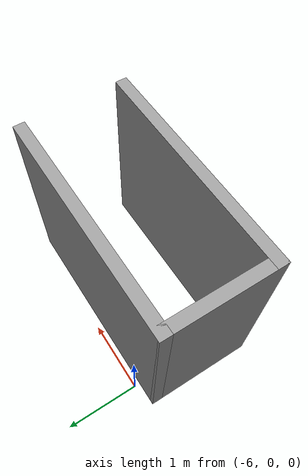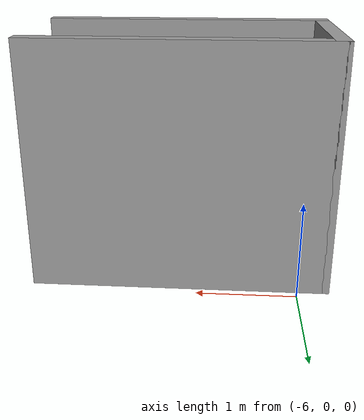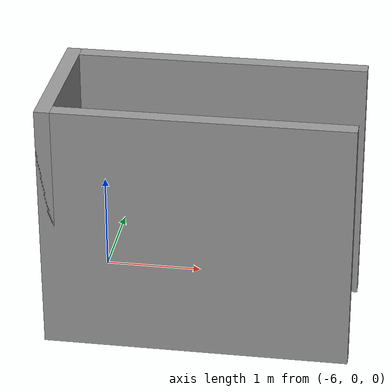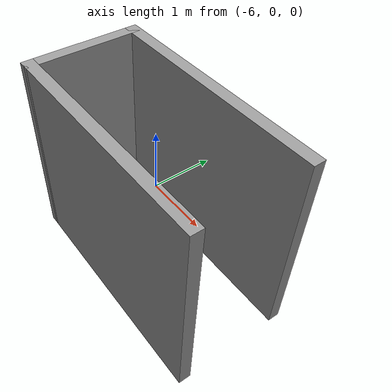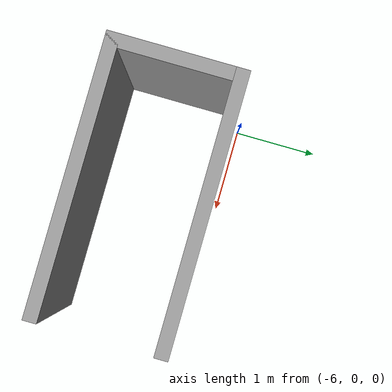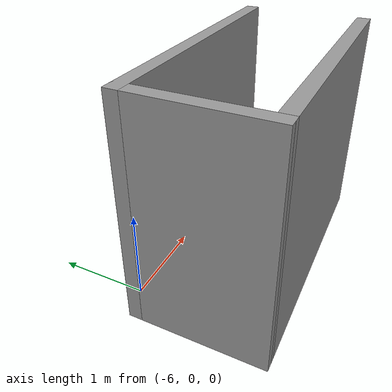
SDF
<?xml version='1.0'?>
<sdf version='1.6'>
<world>
<light name='sun' type='directional'>
      <cast_shadows>1</cast_shadows>
      <pose frame=''>0 0 10 0 -0 0</pose>
      <diffuse>0.8 0.8 0.8 1</diffuse>
      <specular>0.2 0.2 0.2 1</specular>
      <attenuation>
        <range>1000</range>
        <constant>0.9</constant>
        <linear>0.01</linear>
        <quadratic>0.001</quadratic>
      </attenuation>
      <direction>0.5 0.1 -0.9</direction>
    </light>
    <scene>
      <ambient>0.4 0.4 0.4 1</ambient>
      <background>0.7 0.7 0.7 1</background>
      <shadows>1</shadows>
    </scene>
    <physics name='default_physics' default='0' type='ode'>
      <max_step_size>0.01</max_step_size>
      <real_time_factor>1</real_time_factor>
      <real_time_update_rate>100</real_time_update_rate>
    </physics>
  <model name='Hallway'>
    <pose frame=''>-4.82765 -0.824727 0 0 -0 0</pose>
    <link name='Wall_31'>
      <collision name='Wall_31_Collision'>
        <geometry>
          <box>
            <size>3 0.15 2.5</size>
          </box>
        </geometry>
        <pose frame=''>0 0 1.25 0 -0 0</pose>
      </collision>
      <visual name='Wall_31_Visual'>
        <pose frame=''>0 0 1.25 0 -0 0</pose>
        <geometry>
          <box>
            <size>3 0.15 2.5</size>
          </box>
        </geometry>
        <material>
          <script>
            <uri>file://media/materials/scripts/gazebo.material</uri>
            <name>Gazebo/Grey</name>
          </script>
          <ambient>1 1 1 1</ambient>
        </material>
      </visual>
      <pose frame=''>0 0.675 0 0 -0 0</pose>
    </link>
    <link name='Wall_33'>
      <collision name='Wall_33_Collision'>
        <geometry>
          <box>
            <size>1.5 0.15 2.5</size>
          </box>
        </geometry>
        <pose frame=''>0 0 1.25 0 -0 0</pose>
      </collision>
      <visual name='Wall_33_Visual'>
        <pose frame=''>0 0 1.25 0 -0 0</pose>
        <geometry>
          <box>
            <size>1.5 0.15 2.5</size>
          </box>
        </geometry>
        <material>
          <script>
            <uri>file://media/materials/scripts/gazebo.material</uri>
            <name>Gazebo/Grey</name>
          </script>
          <ambient>1 1 1 1</ambient>
        </material>
      </visual>
      <pose frame=''>-1.425 0 0 0 0 -1.5708</pose>
    </link>
    <link name='Wall_34'>
      <collision name='Wall_34_Collision'>
        <geometry>
          <box>
            <size>3 0.15 2.5</size>
          </box>
        </geometry>
        <pose frame=''>0 0 1.25 0 -0 0</pose>
      </collision>
      <visual name='Wall_34_Visual'>
        <pose frame=''>0 0 1.25 0 -0 0</pose>
        <geometry>
          <box>
            <size>3 0.15 2.5</size>
          </box>
        </geometry>
        <material>
          <script>
            <uri>file://media/materials/scripts/gazebo.material</uri>
            <name>Gazebo/Grey</name>
          </script>
          <ambient>1 1 1 1</ambient>
        </material>
      </visual>
      <pose frame=''>0 -0.675 0 0 -0 0</pose>
    </link>
    <static>1</static>
  </model>
  <model name='ground_plane_0'>
        <pose frame=''>0.497681 0 0 0 -0 0</pose>
        <scale>1 1 1</scale>
        <link name='link'>
          <pose frame=''>0.497681 0 0 0 -0 0</pose>
          <velocity>0 0 0 0 -0 0</velocity>
          <acceleration>0 0 0 0 -0 0</acceleration>
          <wrench>0 0 0 0 -0 0</wrench>
        </link>
      </model>
  </world>
</sdf>
